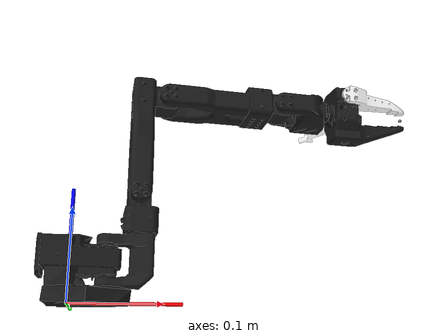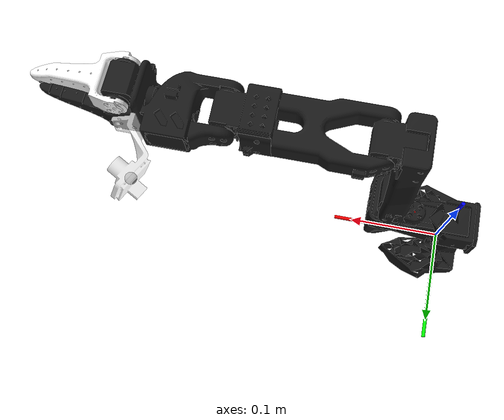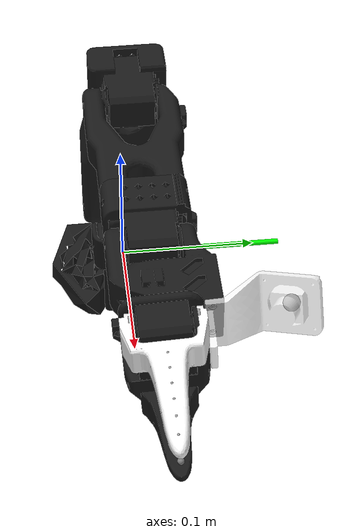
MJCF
<mujoco model="so101">
  <option timestep="0.001" gravity="0 0 -9.80665" integrator="implicitfast" />
  <compiler angle="radian" meshdir="../assets" autolimits="true" />
  <asset>
    <texture type="skybox" builtin="gradient" rgb1="0.3 0.5 0.7" rgb2="0.2 0.2 0.2" width="512" height="3072" />
  </asset>

  <include file="../mjcf/so101_defaults.xml" />
  <include file="../mjcf/so101_assets.xml" />
  <include file="../mjcf/so101_actuators.xml" />
  <include file="../mjcf/so101_sensors.xml" />

  <worldbody>
    <include file="../mjcf/so101_links.xml" />
  </worldbody>

  <keyframe>
    <key name="home" qpos="0 -1.57079 0 0 0 0" ctrl="0 -1.57079 0 0 0 0" />
    <key name="standby1" qpos="0 0 0 1.57079 -1.57079 0" ctrl="0 0 0 1.57079 -1.57079 0" />
    <key name="standby2" qpos="0 0 0 1.57079 -1.57079 0" ctrl="0 0 0 1.57079 -1.57079 0" />
    <key name="rest" qpos="0 -1.75 1.57 1.18 0 -0.174" ctrl="0 -1.75 1.57 1.18 0 -0.174" />
  </keyframe>
</mujoco>

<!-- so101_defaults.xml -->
<mujoco model="so101_defaults">
  <default>
    <default class="so101_new_calib">
      <default class="visual">
        <geom type="mesh" contype="0" conaffinity="0" group="2"/>
      </default>
      <default class="collision">
        <geom group="3"/>
        <default class="finger_collision">
          <geom type="box" solimp="0 1 0.001 0.02 3" solref="0.001 1" friction="2 0.05 0.05"/>
        </default>
      </default>
    </default>
    <default class="sts3215">
      <geom contype="0" conaffinity="0"/>
      <joint damping="0.60" frictionloss="0.052" armature="0.028"/>
      <position kp="50" dampratio="1"/>
    </default>
  </default>

</mujoco>

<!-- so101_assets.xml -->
<mujoco model="so101_assets">

  <asset>
    <material name="red" rgba="1 0.072272 0.039546 1"/>
    <material name="orange" rgba="1.0 0.5 0.0 1"/>
    <material name="yellow" rgba="1.0 1.0 0.0 1"/>
    <material name="green" rgba="0.0 1.0 0.0 1"/>
    <material name="blue" rgba="0.0 0.0 1.0 1"/>
    <material name="cyan" rgba="0.0 1.0 1.0 1" />

    <!-- Mesh files -->
    <mesh file="waveshare_mounting_plate_so101_v2.stl"/>
    <mesh file="sts3215_03a_v1.stl"/>
    <mesh file="motor_holder_so101_base_v1.stl"/>
    <mesh file="wrist_roll_follower_so101_v1.stl"/>
    <mesh file="moving_jaw_so101_v1.stl"/>
    <mesh file="base_motor_holder_so101_v1.stl"/>
    <mesh file="upper_arm_so101_v1.stl"/>
    <mesh file="wrist_roll_pitch_so101_v2.stl"/>
    <mesh file="under_arm_so101_v1.stl"/>
    <mesh file="rotation_pitch_so101_v1.stl"/>
    <mesh file="motor_holder_so101_wrist_v1.stl"/>
    <mesh file="sts3215_03a_no_horn_v1.stl"/>
    <mesh file="base_so101_v2.stl"/>
    <mesh name="Wrist_Camera" file="../assets/Wrist_Camera_With_Adap_V0d2.stl"/>

    <!-- Materials -->
    <material name="base_motor_holder_so101_v1_material" rgba="0.1 0.1 0.1 1"/>
    <material name="base_so101_v2_material" rgba="0.1 0.1 0.1 1"/>
    <material name="sts3215_03a_v1_material" rgba="0.1 0.1 0.1 1"/>
    <material name="waveshare_mounting_plate_so101_v2_material" rgba="0.1 0.1 0.1 1"/>
    <material name="motor_holder_so101_base_v1_material" rgba="0.1 0.1 0.1 1"/>
    <material name="rotation_pitch_so101_v1_material" rgba="0.1 0.1 0.1 1"/>
    <material name="upper_arm_so101_v1_material" rgba="0.1 0.1 0.1 1"/>
    <material name="under_arm_so101_v1_material" rgba="0.1 0.1 0.1 1"/>
    <material name="motor_holder_so101_wrist_v1_material" rgba="0.1 0.1 0.1 1"/>
    <material name="sts3215_03a_no_horn_v1_material" rgba="0.1 0.1 0.1 1"/>
    <material name="wrist_roll_pitch_so101_v2_material" rgba="0.1 0.1 0.1 1"/>
    <material name="wrist_roll_follower_so101_v1_material" rgba="0.1 0.1 0.1 1"/>
    <material name="moving_jaw_so101_v1_material" rgba="1 1 1 1"/>
  </asset>

</mujoco>

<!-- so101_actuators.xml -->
<mujoco model="so101_actuators">

  <actuator>
    <position class="sts3215" name="shoulder_pan" joint="shoulder_pan" forcerange="-3.35 3.35" ctrlrange="-1.91986 1.91986"/>
    <position class="sts3215" name="shoulder_lift" joint="shoulder_lift" forcerange="-3.35 3.35" ctrlrange="-1.74533 1.74533"/>
    <position class="sts3215" name="elbow_flex" joint="elbow_flex" forcerange="-3.35 3.35" ctrlrange="-1.69 1.69"/>
    <position class="sts3215" name="wrist_flex" joint="wrist_flex" forcerange="-3.35 3.35" ctrlrange="-1.65806 1.65806"/>
    <position class="sts3215" name="wrist_roll" joint="wrist_roll" forcerange="-3.35 3.35" ctrlrange="-2.74385 2.84121"/>
    <position class="sts3215" name="gripper" joint="gripper" forcerange="-3.35 3.35" ctrlrange="-0.17453 1.74533"/>
  </actuator>

</mujoco>

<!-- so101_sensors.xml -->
<mujoco model="so101_sensors">

  <sensor>
    <framepos name="eePos" objtype="site" objname="EE"/>
    <framequat name="eeQuat" objtype="site" objname="EE"/>
    <framelinvel name="eeLinVel" objtype="site" objname="EE"/>
    <frameangvel name="eeAngVel" objtype="site" objname="EE"/>
    <gyro name="eeGyro" site="EE"/>
    <accelerometer name="eeAcc" site="EE"/>
    <force name="eeForce" site="EE"/>
  </sensor>

</mujoco>

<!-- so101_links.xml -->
<mujoco model="so101_links">
  <body name="base" childclass="so101_new_calib">
    <geom type="cylinder" size="0.002 0.06" rgba="1 0 0 1" pos="0.06 0.0 0.0" euler="0 1.57079 0" class="visual" />
    <geom type="cylinder" size="0.002 0.06" rgba="0 1 0 1" pos="0.0 0.06 0.0" euler="1.57079 0 0" class="visual" />
    <geom type="cylinder" size="0.002 0.06" rgba="0 0 1 1" pos="0.0 0.0 0.06" euler="0 0 0" class="visual" />

    <inertial pos="0.0137179 -5.19711e-05 0.0334843" mass="0.147" fullinertia="0.000114686 0.000136117 0.000130364 -4.59787e-07 4.97151e-06 9.75275e-08" />
    <geom type="mesh" class="visual" pos="-0.00636471 -9.94414e-05 -0.0024" quat="0.5 0.5 0.5 0.5" mesh="base_motor_holder_so101_v1" material="base_motor_holder_so101_v1_material" />
    <geom type="mesh" class="visual" pos="-0.00636471 -8.97657e-09 -0.0024" quat="0.5 0.5 0.5 0.5" mesh="base_so101_v2" material="base_so101_v2_material" />
    <geom type="mesh" class="visual" pos="0.0263353 -8.97657e-09 0.0437" quat="1 -2.85511e-16 -9.64433e-17 6.12908e-16" mesh="sts3215_03a_v1" material="sts3215_03a_v1_material" />
    <geom type="mesh" class="visual" pos="-0.0309827 -0.000199441 0.0474" quat="0.5 0.5 0.5 0.5" mesh="waveshare_mounting_plate_so101_v2" material="waveshare_mounting_plate_so101_v2_material" />

    <body name="shoulder" pos="0.0388353 -8.97657e-09 0.0624" quat="3.56167e-16 1.22818e-15 -1 -4.14635e-16">
      <site name="shoulderSite" pos="0.0 0 0.0" rgba="1 0 0 1" />

      <joint axis="0 0 1" name="shoulder_pan" type="hinge" range="-1.9198621771937616 1.9198621771937634" class="sts3215" />
      <inertial pos="-0.0307604 -1.66727e-05 -0.0252713" mass="0.100006" fullinertia="8.3759e-05 8.10403e-05 2.39783e-05 7.55525e-08 -1.16342e-06 1.54663e-07" />
      <geom type="mesh" class="visual" pos="-0.0303992 0.000422241 -0.0417" quat="0.5 0.5 0.5 -0.5" mesh="sts3215_03a_v1" material="sts3215_03a_v1_material" />
      <geom type="mesh" class="collision" pos="-0.0303992 0.000422241 -0.0417" quat="0.5 0.5 0.5 -0.5" mesh="sts3215_03a_v1" material="sts3215_03a_v1_material" />
      <geom type="mesh" class="visual" pos="-0.0675992 -0.000177759 0.0158499" quat="0.5 0.5 -0.5 0.5" mesh="motor_holder_so101_base_v1" material="motor_holder_so101_base_v1_material" />
      <geom type="mesh" class="collision" pos="-0.0675992 -0.000177759 0.0158499" quat="0.5 0.5 -0.5 0.5" mesh="motor_holder_so101_base_v1" material="motor_holder_so101_base_v1_material" />
      <geom type="mesh" class="visual" pos="0.0122008 2.22413e-05 0.0464" quat="0.707107 -0.707107 -0 8.3163e-34" mesh="rotation_pitch_so101_v1" material="rotation_pitch_so101_v1_material" />
      <geom type="mesh" class="collision" pos="0.0122008 2.22413e-05 0.0464" quat="0.707107 -0.707107 -0 8.3163e-34" mesh="rotation_pitch_so101_v1" material="rotation_pitch_so101_v1_material" />

      <body name="upper_arm" pos="-0.0303992 -0.0182778 -0.0542" quat="0.5 -0.5 -0.5 -0.5">
        <joint axis="0 0 1" name="shoulder_lift" type="hinge" range="-1.7453292519943224 1.7453292519943366" class="sts3215" />
        <inertial pos="-0.0898471 -0.00838224 0.0184089" mass="0.103" fullinertia="4.08002e-05 0.000147318 0.000142487 -1.97819e-05 -4.03016e-08 8.97326e-09" />
        <geom type="mesh" class="visual" pos="-0.11257 -0.0155 0.0187" quat="4.56308e-16 -0.707107 0.707107 -1.37383e-16" mesh="sts3215_03a_v1" material="sts3215_03a_v1_material" />
        <geom type="mesh" class="collision" pos="-0.11257 -0.0155 0.0187" quat="4.56308e-16 -0.707107 0.707107 -1.37383e-16" mesh="sts3215_03a_v1" material="sts3215_03a_v1_material" />
        <geom type="mesh" class="visual" pos="-0.065085 0.012 0.0182" quat="0 1 0 0" mesh="upper_arm_so101_v1" material="upper_arm_so101_v1_material" />
        <geom type="mesh" class="collision" pos="-0.065085 0.012 0.0182" quat="0 1 0 0" mesh="upper_arm_so101_v1" material="upper_arm_so101_v1_material" />

        <body name="lower_arm" pos="-0.11257 -0.028 1.73763e-16" quat="0.707107 -5.98613e-17 -2.58051e-17 0.707107">
          <site name="elbowSite" pos="0.0 0. 0.0182778" rgba="1 0 0 1" />

          <joint axis="0 0 1" name="elbow_flex" type="hinge" range="-1.69 1.69" class="sts3215" />
          <inertial pos="-0.0980701 0.00324376 0.0182831" mass="0.104" fullinertia="2.87438e-05 0.000159844 0.00014529 7.41152e-06 1.26409e-06 -4.90188e-08" />
          <geom type="mesh" class="visual" pos="-0.0648499 -0.032 0.0182" quat="0 1 0 0" mesh="under_arm_so101_v1" material="under_arm_so101_v1_material" />
          <geom type="mesh" class="collision" pos="-0.0648499 -0.032 0.0182" quat="0 1 0 0" mesh="under_arm_so101_v1" material="under_arm_so101_v1_material" />
          <geom type="mesh" class="visual" pos="-0.0648499 -0.032 0.018" quat="3.92687e-16 -1 -1.9186e-15 -6.38378e-16" mesh="motor_holder_so101_wrist_v1" material="motor_holder_so101_wrist_v1_material" />
          <geom type="mesh" class="collision" pos="-0.0648499 -0.032 0.018" quat="3.92687e-16 -1 -1.9186e-15 -6.38378e-16" mesh="motor_holder_so101_wrist_v1" material="motor_holder_so101_wrist_v1_material" />
          <geom type="mesh" class="visual" pos="-0.1224 0.0052 0.0187" quat="7.21645e-16 1.56949e-15 1 -3.33067e-16" mesh="sts3215_03a_v1" material="sts3215_03a_v1_material" />
          <geom type="mesh" class="collision" pos="-0.1224 0.0052 0.0187" quat="7.21645e-16 1.56949e-15 1 -3.33067e-16" mesh="sts3215_03a_v1" material="sts3215_03a_v1_material" />

          <body name="wrist" pos="-0.1349 0.0052 3.62355e-17" quat="0.707107 9.58722e-16 -7.51313e-16 -0.707107">
            <site name="wristSite" pos="0.0 0 0.0182778" rgba="1 0 0 1" />

            <joint axis="0 0 1" name="wrist_flex" type="hinge" range="-1.6580628494556928 1.6580627293335335" class="sts3215" />
            <inertial pos="-0.000103312 -0.0386143 0.0281156" mass="0.079" fullinertia="3.68263e-05 2.5391e-05 2.1e-05 1.7893e-08 -5.28128e-08 3.6412e-06" />
            <geom type="mesh" class="visual" pos="8.32667e-17 -0.0424 0.0306" quat="0.5 0.5 0.5 -0.5" mesh="sts3215_03a_no_horn_v1" material="sts3215_03a_no_horn_v1_material" />
            <geom type="mesh" class="collision" pos="8.32667e-17 -0.0424 0.0306" quat="0.5 0.5 0.5 -0.5" mesh="sts3215_03a_no_horn_v1" material="sts3215_03a_no_horn_v1_material" />
            <geom type="mesh" class="visual" pos="0 -0.028 0.0181" quat="0.5 -0.5 -0.5 -0.5" mesh="wrist_roll_pitch_so101_v2" material="wrist_roll_pitch_so101_v2_material" />
            <geom type="mesh" class="collision" pos="0 -0.028 0.0181" quat="0.5 -0.5 -0.5 -0.5" mesh="wrist_roll_pitch_so101_v2" material="wrist_roll_pitch_so101_v2_material" />

            <body name="gripper" pos="5.55112e-17 -0.0611 0.0181" quat="0.0172091 -0.0172091 0.706897 0.706897">
              <joint axis="0 0 1" name="wrist_roll" type="hinge" range="-2.7438472969992493 2.841206309382605" class="sts3215" />
              <inertial pos="0.000213627 0.000245138 -0.025187" mass="0.087" fullinertia="2.75087e-05 4.33657e-05 3.45059e-05 -3.35241e-07 -5.7352e-06 -5.17847e-08" />
              <geom type="mesh" class="visual" pos="0.0077 0.0001 -0.0234" quat="0.707107 -0.707107 1.66015e-15 6.45094e-15" mesh="sts3215_03a_v1" material="sts3215_03a_v1_material" />
              <geom type="mesh" class="collision" pos="0.0077 0.0001 -0.0234" quat="0.707107 -0.707107 1.66015e-15 6.45094e-15" mesh="sts3215_03a_v1" material="sts3215_03a_v1_material" />
              <geom type="mesh" class="visual" pos="8.32667e-17 -0.000218214 0.000949706" quat="0 1 0 0" mesh="wrist_roll_follower_so101_v1" material="wrist_roll_follower_so101_v1_material" />
              <geom type="mesh" class="collision" pos="8.32667e-17 -0.000218214 0.000949706" quat="0 1 0 0" mesh="wrist_roll_follower_so101_v1" material="wrist_roll_follower_so101_v1_material" />
              <geom class="finger_collision" name="fixed_jaw_pad_1" size="0.001 0.005 0.004" pos="-0.0089 0 -0.1014" />
              <geom class="finger_collision" name="fixed_jaw_pad_2" size="0.001 0.005 0.006" pos="-0.0109 0 -0.0914" />
              <geom class="finger_collision" name="fixed_jaw_pad_3" size="0.001 0.01 0.007" pos="-0.0126 0 -0.0768" />
              <geom class="finger_collision" name="fixed_jaw_pad_4" size="0.001 0.01 0.008" pos="-0.0143 0 -0.0572" />

              <body name="camera_orientation_bias" pos="-.005 .0244 -.024" euler="-1.57079 0 1.57079">
                <body name="camera" pos="0 0 0" euler="0 0 0">
                  <geom type="mesh" mesh="Wrist_Camera" rgba="1 1 1 0.7" />
                  <body pos="-.0245 -.0085 .0495" euler="2.505 -2.13 0.87079">
                    <camera name="Wrist_camera" mode="fixed" resolution="1920 1080" sensorsize="5.76 3.24" focal="2.1 2.1" />

                    <body name="tf0" euler="3.1415926 0 0">
                      <site name="camera_wrist" pos="0 0 0" />
                    </body>
                  </body>
                </body>
              </body>

              <body name="tf1" euler="0 0 1.57079">
                <site name="EE" size="0.002" pos="0.0 0.0 -0.1" />
              </body>

              <body name="moving_jaw_so101_v1" pos="0.0202 0.0188 -0.0234" quat="0.707107 0.707107 -1.85362e-08 1.85362e-08">
                <joint axis="0 0 1" name="gripper" type="hinge" range="-0.17453297762778586 1.7453291995659765" class="sts3215" />
                <inertial pos="-0.00157495 -0.0300244 0.0192755" mass="0.012" fullinertia="6.61427e-06 1.89032e-06 5.28738e-06 -3.19807e-07 -5.90717e-09 -1.09945e-07" />
                <geom type="mesh" class="visual" pos="-5.55112e-17 -5.55112e-17 0.0189" quat="1 -0 3.00524e-16 -2.00834e-17" mesh="moving_jaw_so101_v1" material="moving_jaw_so101_v1_material" />
                <geom type="mesh" class="collision" pos="-5.55112e-17 -5.55112e-17 0.0189" quat="1 -0 3.00524e-16 -2.00834e-17" mesh="moving_jaw_so101_v1" material="moving_jaw_so101_v1_material" />
                <geom class="finger_collision" name="moving_jaw_pad_1" size="0.001 0.005 0.004" pos="-0.0113 -0.077 0.019" />
                <geom class="finger_collision" name="moving_jaw_pad_2" size="0.001 0.005 0.006" pos="-0.0093 -0.067 0.019" />
                <geom class="finger_collision" name="moving_jaw_pad_3" size="0.001 0.01 0.006" pos="-0.0073 -0.055 0.019" />
                <geom class="finger_collision" name="moving_jaw_pad_4" size="0.001 0.01 0.008" pos="-0.0073 -0.035 0.019" />
              </body>
            </body>
          </body>
        </body>
      </body>
    </body>

  </body>

</mujoco>
